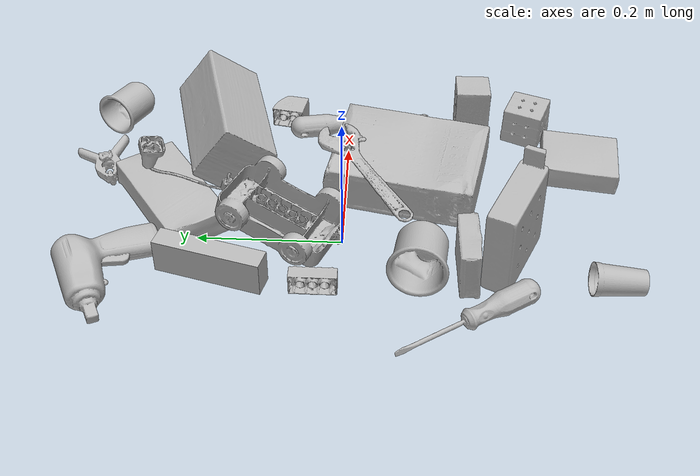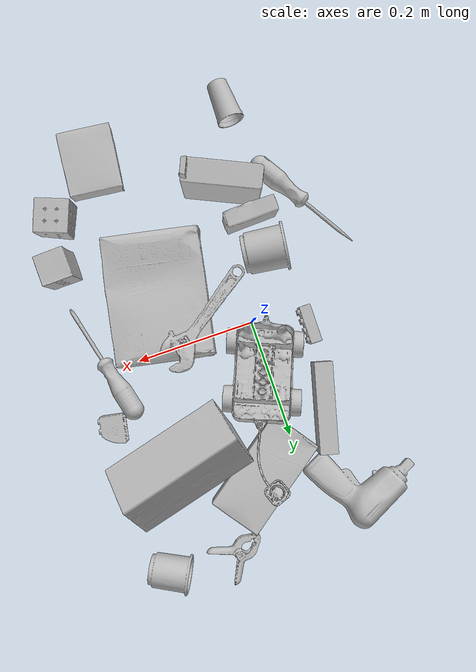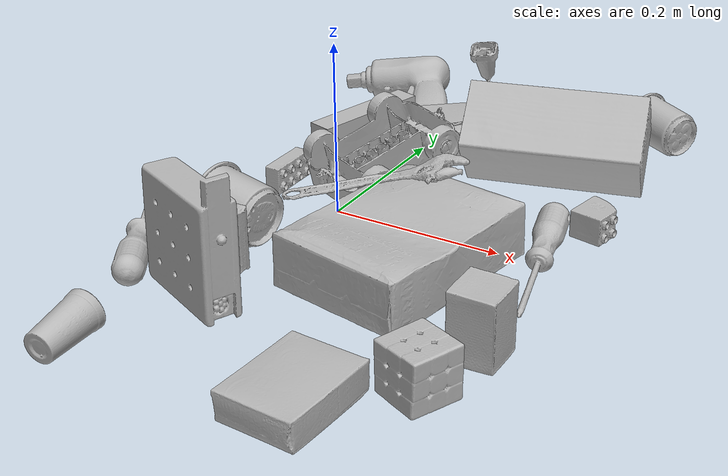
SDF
<sdf version="1.4">
  <world name="default">
    <light name="light1" type="point">
      <pose>0 0 1 0 0 0</pose>
      <diffuse>3 3 3 1</diffuse>
      <specular>3 3 3 1</specular>
    </light>
    <light name="light2" type="point">
      <pose>0 0.5 2 0 0 0</pose>
      <diffuse>1 1 1 1</diffuse>
      <specular>1 1 1 1</specular>
    </light>
    <light name="light3" type="point">
      <pose>0 0.5 2 0 0 0</pose>
      <diffuse>3 3 3 1</diffuse>
      <specular>3 3 3 1</specular>
    </light>
    <scene>
      <ambient>0.7 0.7 0.7</ambient>
    </scene>
    <model name="box21">
      <link name="link_box21">
        <collision name="default">
          <geometry>
            <mesh>
              <uri>model://cracker_box/collision_meshes/collision.obj</uri>
              <scale>1.0 1.0 1.0</scale>
            </mesh>
          </geometry>
          <surface>
            <friction>
              <ode>
                <mu>0.5</mu>
                <mu2>0.5</mu2>
              </ode>
            </friction>
          <contact>
        <ode>
            <max_vel>0</max_vel>
            <min_depth>0.0001</min_depth>
            <kp>1e8</kp>
        </ode>
    </contact></surface>
        </collision>
        <visual name="default">
          <geometry>
            <mesh>
              <uri>model://cracker_box/visual_meshes/visual.dae</uri>
              <scale>1.0 1.0 1.0</scale>
            </mesh>
          </geometry>
        </visual>
        <inertial>
          <mass>2.967785358428955</mass>
          <pose>0.0009464151808060706 0.00025434247800149024 -0.0017029535956680775 -0.0003162076618733006 -0.011106490531610344 0.00254679570085012</pose>
          <inertia>
            <ixx>0.0075487206</ixx>
            <iyy>0.012464421</iyy>
            <izz>0.017787872</izz>
            <ixy>0</ixy>
            <ixz>0</ixz>
            <iyz>0</iyz>
          </inertia>
        </inertial>
      </link>
      <pose>0.13189785182476044 -0.0876614972949028 0.036481790244579315 -0.011788031084563768 -0.007367066886816437 1.3768079711267553</pose>
    </model>
    <model name="box22">
      <link name="link_box22">
        <collision name="default">
          <geometry>
            <mesh>
              <uri>model://rubiks_cube/collision_meshes/collision.obj</uri>
              <scale>1.0 1.0 1.0</scale>
            </mesh>
          </geometry>
          <surface>
            <friction>
              <ode>
                <mu>0.5</mu>
                <mu2>0.5</mu2>
              </ode>
            </friction>
          <contact>
        <ode>
            <max_vel>0</max_vel>
            <min_depth>0.0001</min_depth>
            <kp>1e8</kp>
        </ode>
    </contact></surface>
        </collision>
        <visual name="default">
          <geometry>
            <mesh>
              <uri>model://rubiks_cube/visual_meshes/visual.dae</uri>
              <scale>1.0 1.0 1.0</scale>
            </mesh>
          </geometry>
        </visual>
        <inertial>
          <mass>0.2631562352180481</mass>
          <pose>2.6721041649580002e-05 5.2569666877388954e-05 -7.264316082000732e-06 -0.05467275409565722 -0.09814109117242276 -0.03445701547045584</pose>
          <inertia>
            <ixx>0.0001454115</ixx>
            <iyy>0.00014473335</iyy>
            <izz>0.00014661645</izz>
            <ixy>0</ixy>
            <ixz>0</ixz>
            <iyz>0</iyz>
          </inertia>
        </inertial>
      </link>
      <pose>0.2520363926887512 -0.2671244442462921 0.02867893874645233 -5.077067131967531e-06 -2.2193190564832668e-06 2.759340498583177</pose>
    </model>
    <model name="box23">
      <link name="link_box23">
        <collision name="default">
          <geometry>
            <mesh>
              <uri>model://pudding_box/collision_meshes/collision.obj</uri>
              <scale>1.0 1.0 1.0</scale>
            </mesh>
          </geometry>
          <surface>
            <friction>
              <ode>
                <mu>0.5</mu>
                <mu2>0.5</mu2>
              </ode>
            </friction>
          <contact>
        <ode>
            <max_vel>0</max_vel>
            <min_depth>0.0001</min_depth>
            <kp>1e8</kp>
        </ode>
    </contact></surface>
        </collision>
        <visual name="default">
          <geometry>
            <mesh>
              <uri>model://pudding_box/visual_meshes/visual.dae</uri>
              <scale>1.0 1.0 1.0</scale>
            </mesh>
          </geometry>
        </visual>
        <inertial>
          <mass>0.41353368759155273</mass>
          <pose>0.0004894821904599667 0.0008067885646596551 -0.0005188827635720372 0.005213101814074476 -0.006603797777454713 0.020079821436089117</pose>
          <inertia>
            <ixx>0.0004674785</ixx>
            <iyy>0.00031452288</iyy>
            <izz>0.0006903542</izz>
            <ixy>0</ixy>
            <ixz>0</ixz>
            <iyz>0</iyz>
          </inertia>
        </inertial>
      </link>
      <pose>0.16669946908950806 -0.33897164463996887 0.019725803285837173 0.022348652758867035 -0.011391594296740436 -0.10385561894571191</pose>
    </model>
    <model name="cup1">
      <link name="link_cup1">
        <collision name="default">
          <geometry>
            <mesh>
              <uri>model://cup_small/collision_meshes/collision.obj</uri>
              <scale>1.0 1.0 1.0</scale>
            </mesh>
          </geometry>
          <surface>
            <friction>
              <ode>
                <mu>0.5</mu>
                <mu2>0.5</mu2>
              </ode>
            </friction>
          <contact>
        <ode>
            <max_vel>0</max_vel>
            <min_depth>0.0001</min_depth>
            <kp>1e8</kp>
        </ode>
    </contact></surface>
        </collision>
        <visual name="default">
          <geometry>
            <mesh>
              <uri>model://cup_small/visual_meshes/visual.dae</uri>
              <scale>1.0 1.0 1.0</scale>
            </mesh>
          </geometry>
        </visual>
        <inertial>
          <mass>0.02095564641058445</mass>
          <pose>0.00010482477955520153 -0.0003377848770469427 -0.01074282731860876 -0.011492722259696445 -0.015280529703091471 -0.5058449819350237</pose>
          <inertia>
            <ixx>1.2338362e-05</ixx>
            <iyy>1.240201e-05</iyy>
            <izz>5.5708097e-06</izz>
            <ixy>0</ixy>
            <ixz>0</ixz>
            <iyz>0</iyz>
          </inertia>
        </inertial>
      </link>
      <pose>-0.07507549226284027 -0.3624403476715088 0.01985897496342659 -0.8049695293631819 1.439574367241343 0.7899295962558718</pose>
    </model>
    <model name="cup2">
      <link name="link_cup2">
        <collision name="default">
          <geometry>
            <mesh>
              <uri>model://c_cups/collision_meshes/collision.obj</uri>
              <scale>1.0 1.0 1.0</scale>
            </mesh>
          </geometry>
          <surface>
            <friction>
              <ode>
                <mu>0.5</mu>
                <mu2>0.5</mu2>
              </ode>
            </friction>
          <contact>
        <ode>
            <max_vel>0</max_vel>
            <min_depth>0.0001</min_depth>
            <kp>1e8</kp>
        </ode>
    </contact></surface>
        </collision>
        <visual name="default">
          <geometry>
            <mesh>
              <uri>model://c_cups/visual_meshes/visual.dae</uri>
              <scale>1.0 1.0 1.0</scale>
            </mesh>
          </geometry>
        </visual>
        <inertial>
          <mass>0.04905003309249878</mass>
          <pose>0.0007237255922518671 0.0020153908990323544 -0.0012750986497849226 0.30215813246853196 0.013461388587527759 -0.08771773533446486</pose>
          <inertia>
            <ixx>3.6477843e-05</ixx>
            <iyy>3.583322e-05</iyy>
            <izz>3.225985e-05</izz>
            <ixy>0</ixy>
            <ixz>0</ixz>
            <iyz>0</iyz>
          </inertia>
        </inertial>
      </link>
      <pose>0.25928694009780884 0.34334230422973633 0.03001346066594124 -1.4920993073633986 0.389519144704369 1.1406436256698107</pose>
    </model>
    <model name="box11">
      <link name="link_box11">
        <collision name="default">
          <geometry>
            <mesh>
              <uri>model://sugar_box/collision_meshes/collision.obj</uri>
              <scale>1.0 1.0 1.0</scale>
            </mesh>
          </geometry>
          <surface>
            <friction>
              <ode>
                <mu>0.5</mu>
                <mu2>0.5</mu2>
              </ode>
            </friction>
          <contact>
        <ode>
            <max_vel>0</max_vel>
            <min_depth>0.0001</min_depth>
            <kp>1e8</kp>
        </ode>
    </contact></surface>
        </collision>
        <visual name="default">
          <geometry>
            <mesh>
              <uri>model://sugar_box/visual_meshes/visual.dae</uri>
              <scale>1.0 1.0 1.0</scale>
            </mesh>
          </geometry>
        </visual>
        <inertial>
          <mass>0.9405714869499207</mass>
          <pose>0.0010343727190047503 3.849109634757042e-05 -0.0003636480832938105 -0.00040462618385709627 0.0010506635220579009 0.0026153790218148127</pose>
          <inertia>
            <ixx>0.0007836817</ixx>
            <iyy>0.0025330195</iyy>
            <izz>0.0030323272</izz>
            <ixy>0</ixy>
            <ixz>0</ixz>
            <iyz>0</iyz>
          </inertia>
        </inertial>
      </link>
      <pose>0.06087677553296089 0.2429436892271042 0.02280956692993641 0.0021179844877126453 -0.023383571298535043 0.6235160547140282</pose>
    </model>
    <model name="box12">
      <link name="link_box12">
        <collision name="default">
          <geometry>
            <mesh>
              <uri>model://jenga/collision_meshes/collision.obj</uri>
              <scale>1.0 1.0 1.0</scale>
            </mesh>
          </geometry>
          <surface>
            <friction>
              <ode>
                <mu>0.5</mu>
                <mu2>0.5</mu2>
              </ode>
            </friction>
          <contact>
        <ode>
            <max_vel>0</max_vel>
            <min_depth>0.0001</min_depth>
            <kp>1e8</kp>
        </ode>
    </contact></surface>
        </collision>
        <visual name="default">
          <geometry>
            <mesh>
              <uri>model://jenga/visual_meshes/visual.dae</uri>
              <scale>1.0 1.0 1.0</scale>
            </mesh>
          </geometry>
        </visual>
        <inertial>
          <mass>0.2285791039466858</mass>
          <pose>-2.502855807051674e-07 -0.00010250010382151231 -4.0923405322246253e-05 0.0 -7.342155186052628e-07 0.0</pose>
          <inertia>
            <ixx>6.3253385e-05</ixx>
            <iyy>0.00042860323</iyy>
            <izz>0.00045757034</izz>
            <ixy>0</ixy>
            <ixz>0</ixz>
            <iyz>0</iyz>
          </inertia>
        </inertial>
      </link>
      <pose>-0.06766974180936813 0.17079654335975647 0.024496998637914658 -1.5774832833035708 1.3835902780533913e-06 -1.8345820031828002</pose>
    </model>
    <model name="box13">
      <link name="link_box13">
        <collision name="default">
          <geometry>
            <mesh>
              <uri>model://wood_block/collision_meshes/collision.obj</uri>
              <scale>1.0 1.0 1.0</scale>
            </mesh>
          </geometry>
          <surface>
            <friction>
              <ode>
                <mu>0.5</mu>
                <mu2>0.5</mu2>
              </ode>
            </friction>
          <contact>
        <ode>
            <max_vel>0</max_vel>
            <min_depth>0.0001</min_depth>
            <kp>1e8</kp>
        </ode>
    </contact></surface>
        </collision>
        <visual name="default">
          <geometry>
            <mesh>
              <uri>model://wood_block/visual_meshes/visual.dae</uri>
              <scale>1.0 1.0 1.0</scale>
            </mesh>
          </geometry>
        </visual>
        <inertial>
          <mass>1.608048677444458</mass>
          <pose>-5.813315056002466e-06 -0.000570809468626976 0.0002640858292579651 -0.05220975529066727 -0.005192695547513155 -0.006861377927637377</pose>
          <inertia>
            <ixx>0.002151813</ixx>
            <iyy>0.006797577</iyy>
            <izz>0.0067721503</izz>
            <ixy>0</ixy>
            <ixz>0</ixz>
            <iyz>0</iyz>
          </inertia>
        </inertial>
      </link>
      <pose>0.18543802201747894 0.18029537796974182 0.06122288107872009 2.2563507545699206 -0.0071809225877318555 0.2559014732993476</pose>
    </model>
    <model name="box14">
      <link name="link_box14">
        <collision name="default">
          <geometry>
            <mesh>
              <uri>model://gelatin_box/collision_meshes/collision.obj</uri>
              <scale>1.0 1.0 1.0</scale>
            </mesh>
          </geometry>
          <surface>
            <friction>
              <ode>
                <mu>0.5</mu>
                <mu2>0.5</mu2>
              </ode>
            </friction>
          <contact>
        <ode>
            <max_vel>0</max_vel>
            <min_depth>0.0001</min_depth>
            <kp>1e8</kp>
        </ode>
    </contact></surface>
        </collision>
        <visual name="default">
          <geometry>
            <mesh>
              <uri>model://gelatin_box/visual_meshes/visual.dae</uri>
              <scale>1.0 1.0 1.0</scale>
            </mesh>
          </geometry>
        </visual>
        <inertial>
          <mass>0.228233203291893</mass>
          <pose>0.0004319618456065655 0.00011156871914863586 -0.0003640321083366871 -0.0010503721031013481 -0.004755817754301117 0.016440566922732165</pose>
          <inertia>
            <ixx>0.000161114</ixx>
            <iyy>0.0001150829</iyy>
            <izz>0.0002452514</izz>
            <ixy>0</ixy>
            <ixz>0</ixz>
            <iyz>0</iyz>
          </inertia>
        </inertial>
      </link>
      <pose>-0.053159449249506 -0.16840149462223053 0.036439135670661926 0.21418346909284544 -1.5414476061886562 1.3820934400082472</pose>
    </model>
    <model name="cup15">
      <link name="link_cup15">
        <collision name="default">
          <geometry>
            <mesh>
              <uri>model://f_cups/collision_meshes/collision.obj</uri>
              <scale>1.0 1.0 1.0</scale>
            </mesh>
          </geometry>
          <surface>
            <friction>
              <ode>
                <mu>0.5</mu>
                <mu2>0.5</mu2>
              </ode>
            </friction>
          <contact>
        <ode>
            <max_vel>0</max_vel>
            <min_depth>0.0001</min_depth>
            <kp>1e8</kp>
        </ode>
    </contact></surface>
        </collision>
        <visual name="default">
          <geometry>
            <mesh>
              <uri>model://f_cups/visual_meshes/visual.dae</uri>
              <scale>1.0 1.0 1.0</scale>
            </mesh>
          </geometry>
        </visual>
        <inertial>
          <mass>0.05267045274376869</mass>
          <pose>-0.003171468386426568 -0.0006240073125809431 -0.003655537962913513 0.7862325736201227 -0.2607934836260618 -0.18237270236977254</pose>
          <inertia>
            <ixx>4.9511644e-05</ixx>
            <iyy>5.193826e-05</iyy>
            <izz>5.4069198e-05</izz>
            <ixy>0</ixy>
            <ixz>0</ixz>
            <iyz>0</iyz>
          </inertia>
        </inertial>
      </link>
      <pose>-0.057654689997434616 -0.10500217974185944 0.037031058222055435 1.3152917977159795 -1.1783081465364118 -1.459523996882823</pose>
    </model>
    <model name="toy1">
      <link name="link_toy1">
        <collision name="default">
          <geometry>
            <mesh>
              <uri>model://g_lego_duplo/collision_meshes/collision.obj</uri>
              <scale>1.0 1.0 1.0</scale>
            </mesh>
          </geometry>
          <surface>
            <friction>
              <ode>
                <mu>0.5</mu>
                <mu2>0.5</mu2>
              </ode>
            </friction>
          <contact>
        <ode>
            <max_vel>0</max_vel>
            <min_depth>0.0001</min_depth>
            <kp>1e8</kp>
        </ode>
    </contact></surface>
        </collision>
        <visual name="default">
          <geometry>
            <mesh>
              <uri>model://g_lego_duplo/visual_meshes/visual.dae</uri>
              <scale>1.0 1.0 1.0</scale>
            </mesh>
          </geometry>
        </visual>
        <inertial>
          <mass>0.5557854771614075</mass>
          <pose>-0.050047677010297775 0.0017554635414853692 0.0038806761149317026 0.01096300832625367 0.038108254431045284 -0.0965302354071939</pose>
          <inertia>
            <ixx>0.0008053398</ixx>
            <iyy>0.0024348022</iyy>
            <izz>0.003046027</izz>
            <ixy>0</ixy>
            <ixz>0</ixz>
            <iyz>0</iyz>
          </inertia>
        </inertial>
      </link>
      <pose>0.02876749262213707 0.13837075233459473 0.0588301457464695 -3.0770006032701938 -0.2530129808074727 1.174132462412281</pose>
    </model>
    <model name="toy2">
      <link name="link_toy2">
        <collision name="default">
          <geometry>
            <mesh>
              <uri>model://b_toy_airplane/collision_meshes/collision.obj</uri>
              <scale>1.0 1.0 1.0</scale>
            </mesh>
          </geometry>
          <surface>
            <friction>
              <ode>
                <mu>0.5</mu>
                <mu2>0.5</mu2>
              </ode>
            </friction>
          <contact>
        <ode>
            <max_vel>0</max_vel>
            <min_depth>0.0001</min_depth>
            <kp>1e8</kp>
        </ode>
    </contact></surface>
        </collision>
        <visual name="default">
          <geometry>
            <mesh>
              <uri>model://b_toy_airplane/visual_meshes/visual.dae</uri>
              <scale>1.0 1.0 1.0</scale>
            </mesh>
          </geometry>
        </visual>
        <inertial>
          <mass>0.5134223699569702</mass>
          <pose>0.00508136348798871 0.004015584941953421 0.009543065913021564 -0.0400181167848636 -0.04022184003740235 -0.5601502230799963</pose>
          <inertia>
            <ixx>0.00095317804</ixx>
            <iyy>0.00038099466</iyy>
            <izz>0.0011858484</izz>
            <ixy>0</ixy>
            <ixz>0</ixz>
            <iyz>0</iyz>
          </inertia>
        </inertial>
      </link>
      <pose>-0.07532718032598495 0.3173803985118866 0.035689081996679306 3.0695729036060366 0.07405632992088705 -2.6907890778628905</pose>
    </model>
    <model name="toy3">
      <link name="link_toy3">
        <collision name="default">
          <geometry>
            <mesh>
              <uri>model://foam_brick/collision_meshes/collision.obj</uri>
              <scale>1.0 1.0 1.0</scale>
            </mesh>
          </geometry>
          <surface>
            <friction>
              <ode>
                <mu>0.5</mu>
                <mu2>0.5</mu2>
              </ode>
            </friction>
          <contact>
        <ode>
            <max_vel>0</max_vel>
            <min_depth>0.0001</min_depth>
            <kp>1e8</kp>
        </ode>
    </contact></surface>
        </collision>
        <visual name="default">
          <geometry>
            <mesh>
              <uri>model://foam_brick/visual_meshes/visual.dae</uri>
              <scale>1.0 1.0 1.0</scale>
            </mesh>
          </geometry>
        </visual>
        <inertial>
          <mass>0.10737738013267517</mass>
          <pose>-0.0002522472059354186 0.00034584314562380314 -0.0002532101352699101 -0.29401713280371045 0.01727443708188723 -0.0007449863066790336</pose>
          <inertia>
            <ixx>4.6904443e-05</ixx>
            <iyy>7.488536e-05</iyy>
            <izz>7.583706e-05</izz>
            <ixy>0</ixy>
            <ixz>0</ixz>
            <iyz>0</iyz>
          </inertia>
        </inertial>
      </link>
      <pose>0.2719399631023407 -0.18491075932979584 0.03830837085843086 2.0103059888075983 1.5521822663444578 -2.686187429794046</pose>
    </model>
    <model name="toy4">
      <link name="link_toy4">
        <collision name="default">
          <geometry>
            <mesh>
              <uri>model://c_lego_duplo/collision_meshes/collision.obj</uri>
              <scale>1.0 1.0 1.0</scale>
            </mesh>
          </geometry>
          <surface>
            <friction>
              <ode>
                <mu>0.5</mu>
                <mu2>0.5</mu2>
              </ode>
            </friction>
          <contact>
        <ode>
            <max_vel>0</max_vel>
            <min_depth>0.0001</min_depth>
            <kp>1e8</kp>
        </ode>
    </contact></surface>
        </collision>
        <visual name="default">
          <geometry>
            <mesh>
              <uri>model://c_lego_duplo/visual_meshes/visual.dae</uri>
              <scale>1.0 1.0 1.0</scale>
            </mesh>
          </geometry>
        </visual>
        <inertial>
          <mass>0.0418582409620285</mass>
          <pose>0.00031645974377170205 0.00019464627257548273 0.0010453157592564821 -0.011520806412656213 0.005900100982121691 0.03110035028309464</pose>
          <inertia>
            <ixx>1.6107831e-05</ixx>
            <iyy>5.145423e-06</iyy>
            <izz>1.8823655e-05</izz>
            <ixy>0</ixy>
            <ixz>0</ixz>
            <iyz>0</iyz>
          </inertia>
        </inertial>
      </link>
      <pose>-0.08779667317867279 0.03383071720600128 0.01640295796096325 -1.4156922467065636 1.5444058780161216 -1.4210319360394774</pose>
    </model>
    <model name="toy5">
      <link name="link_toy5">
        <collision name="default">
          <geometry>
            <mesh>
              <uri>model://nine_hole_peg_test/collision_meshes/collision.obj</uri>
              <scale>1.0 1.0 1.0</scale>
            </mesh>
          </geometry>
          <surface>
            <friction>
              <ode>
                <mu>0.5</mu>
                <mu2>0.5</mu2>
              </ode>
            </friction>
          <contact>
        <ode>
            <max_vel>0</max_vel>
            <min_depth>0.0001</min_depth>
            <kp>1e8</kp>
        </ode>
    </contact></surface>
        </collision>
        <visual name="default">
          <geometry>
            <mesh>
              <uri>model://nine_hole_peg_test/visual_meshes/visual.dae</uri>
              <scale>1.0 1.0 1.0</scale>
            </mesh>
          </geometry>
        </visual>
        <inertial>
          <mass>0.44585999846458435</mass>
          <pose>-0.004617387428879738 -0.009647615253925323 2.6460689696250483e-05 -0.001466677754783098 0.0007194209279192062 -0.6342398490080472</pose>
          <inertia>
            <ixx>0.0006971755</ixx>
            <iyy>0.0006509454</iyy>
            <izz>0.0012216569</izz>
            <ixy>0</ixy>
            <ixz>0</ixz>
            <iyz>0</iyz>
          </inertia>
        </inertial>
      </link>
      <pose>-0.021108761429786682 -0.22863471508026123 0.07397209852933884 1.5549907315139495 -0.009793853942241986 -0.42669137042061</pose>
    </model>
    <model name="toy6">
      <link name="link_toy6">
        <collision name="default">
          <geometry>
            <mesh>
              <uri>model://d_lego_duplo/collision_meshes/collision.obj</uri>
              <scale>1.0 1.0 1.0</scale>
            </mesh>
          </geometry>
          <surface>
            <friction>
              <ode>
                <mu>0.5</mu>
                <mu2>0.5</mu2>
              </ode>
            </friction>
          <contact>
        <ode>
            <max_vel>0</max_vel>
            <min_depth>0.0001</min_depth>
            <kp>1e8</kp>
        </ode>
    </contact></surface>
        </collision>
        <visual name="default">
          <geometry>
            <mesh>
              <uri>model://d_lego_duplo/visual_meshes/visual.dae</uri>
              <scale>1.0 1.0 1.0</scale>
            </mesh>
          </geometry>
        </visual>
        <inertial>
          <mass>0.03287249803543091</mass>
          <pose>0.00283056334592402 0.0001636616507312283 0.000858980929479003 0.08010843587180921 -0.38355193616427774 0.0010296778305230027</pose>
          <inertia>
            <ixx>6.363631e-06</ixx>
            <iyy>9.031719e-06</iyy>
            <izz>8.709827e-06</izz>
            <ixy>0</ixy>
            <ixz>0</ixz>
            <iyz>0</iyz>
          </inertia>
        </inertial>
      </link>
      <pose>0.275559663772583 0.09294599294662476 0.01638062484562397 -1.5707963194151136 -0.008044400452436078 -1.7547185368809257</pose>
    </model>
    <model name="hardware1">
      <link name="link_hardware1">
        <collision name="default">
          <geometry>
            <mesh>
              <uri>model://phillips_screwdriver/collision_meshes/collision.obj</uri>
              <scale>1.0 1.0 1.0</scale>
            </mesh>
          </geometry>
          <surface>
            <friction>
              <ode>
                <mu>0.5</mu>
                <mu2>0.5</mu2>
              </ode>
            </friction>
          <contact>
        <ode>
            <max_vel>0</max_vel>
            <min_depth>0.0001</min_depth>
            <kp>1e8</kp>
        </ode>
    </contact></surface>
        </collision>
        <visual name="default">
          <geometry>
            <mesh>
              <uri>model://phillips_screwdriver/visual_meshes/visual.dae</uri>
              <scale>1.0 1.0 1.0</scale>
            </mesh>
          </geometry>
        </visual>
        <inertial>
          <mass>0.05929635465145111</mass>
          <pose>-0.04777182266116142 0.0010362300090491772 -0.00045555492397397757 -0.15720933335137202 0.005850991845378533 -0.002156742438797471</pose>
          <inertia>
            <ixx>6.9667135e-06</ixx>
            <iyy>8.735042e-05</iyy>
            <izz>8.742465e-05</izz>
            <ixy>0</ixy>
            <ixz>0</ixz>
            <iyz>0</iyz>
          </inertia>
        </inertial>
      </link>
      <pose>0.2525642514228821 -0.0127020925283432 0.015409659594297409 0.0656113798590078 0.037568019787933976 -1.3256670523649396</pose>
    </model>
    <model name="hardware2">
      <link name="link_hardware2">
        <collision name="default">
          <geometry>
            <mesh>
              <uri>model://flat_screwdriver/collision_meshes/collision.obj</uri>
              <scale>1.0 1.0 1.0</scale>
            </mesh>
          </geometry>
          <surface>
            <friction>
              <ode>
                <mu>0.5</mu>
                <mu2>0.5</mu2>
              </ode>
            </friction>
          <contact>
        <ode>
            <max_vel>0</max_vel>
            <min_depth>0.0001</min_depth>
            <kp>1e8</kp>
        </ode>
    </contact></surface>
        </collision>
        <visual name="default">
          <geometry>
            <mesh>
              <uri>model://flat_screwdriver/visual_meshes/visual.dae</uri>
              <scale>1.0 1.0 1.0</scale>
            </mesh>
          </geometry>
        </visual>
        <inertial>
          <mass>0.08023945242166519</mass>
          <pose>-0.0489187017083168 -0.0006576800369657576 -0.000614091579336673 -0.561358306335632 -0.0032337267228942767 0.006982275729110292</pose>
          <inertia>
            <ixx>9.4802335e-06</ixx>
            <iyy>0.00012035375</iyy>
            <izz>0.00012029803</izz>
            <ixy>0</ixy>
            <ixz>0</ixz>
            <iyz>0</iyz>
          </inertia>
        </inertial>
      </link>
      <pose>-0.14504437148571014 -0.1665760725736618 0.015211116522550583 1.7959008007379058 0.038806702548345486 2.1399432407466676</pose>
    </model>
    <model name="hardware3">
      <link name="link_hardware3">
        <collision name="default">
          <geometry>
            <mesh>
              <uri>model://medium_clamp/collision_meshes/collision.obj</uri>
              <scale>1.0 1.0 1.0</scale>
            </mesh>
          </geometry>
          <surface>
            <friction>
              <ode>
                <mu>0.5</mu>
                <mu2>0.5</mu2>
              </ode>
            </friction>
          <contact>
        <ode>
            <max_vel>0</max_vel>
            <min_depth>0.0001</min_depth>
            <kp>1e8</kp>
        </ode>
    </contact></surface>
        </collision>
        <visual name="default">
          <geometry>
            <mesh>
              <uri>model://medium_clamp/visual_meshes/visual.dae</uri>
              <scale>1.0 1.0 1.0</scale>
            </mesh>
          </geometry>
        </visual>
        <inertial>
          <mass>0.025976430624723434</mass>
          <pose>0.0053909942507743835 0.0003953239065594971 -0.0001222159480676055 -0.001226907020768324 0.0025845009771016812 0.038207788380880015</pose>
          <inertia>
            <ixx>7.0769133e-06</ixx>
            <iyy>1.02989125e-05</iyy>
            <izz>1.5863408e-05</izz>
            <ixy>0</ixy>
            <ixz>0</ixz>
            <iyz>0</iyz>
          </inertia>
        </inertial>
      </link>
      <pose>0.14550676941871643 0.35468098521232605 0.013314727693796158 -3.0195281209860347 0.07747268833089099 -2.76147900970387</pose>
    </model>
    <model name="hardware4">
      <link name="link_hardware4">
        <collision name="default">
          <geometry>
            <mesh>
              <uri>model://adjustable_wrench/collision_meshes/collision.obj</uri>
              <scale>1.0 1.0 1.0</scale>
            </mesh>
          </geometry>
          <surface>
            <friction>
              <ode>
                <mu>0.5</mu>
                <mu2>0.5</mu2>
              </ode>
            </friction>
          <contact>
        <ode>
            <max_vel>0</max_vel>
            <min_depth>0.0001</min_depth>
            <kp>1e8</kp>
        </ode>
    </contact></surface>
        </collision>
        <visual name="default">
          <geometry>
            <mesh>
              <uri>model://adjustable_wrench/visual_meshes/visual.dae</uri>
              <scale>1.0 1.0 1.0</scale>
            </mesh>
          </geometry>
        </visual>
        <inertial>
          <mass>0.023418840020895004</mass>
          <pose>0.03740980848670006 -0.00289688678458333 -0.0011149229248985648 -0.014473354604289867 0.006656022134877207 -0.010954199158636425</pose>
          <inertia>
            <ixx>4.793005e-06</ixx>
            <iyy>5.609652e-05</iyy>
            <izz>6.0634928e-05</izz>
            <ixy>0</ixy>
            <ixz>0</ixz>
            <iyz>0</iyz>
          </inertia>
        </inertial>
      </link>
      <pose>0.07455770671367645 -0.031646594405174255 0.0702180340886116 3.0545220037259164 -0.13503434975678003 0.6351577147919719</pose>
    </model>
  <physics type="ode">
      <max_contacts>50</max_contacts>
      <ode>
        <solver>
          <type>quick</type>
          <iters>75</iters>
        </solver>
        <constraints>
          <contact_max_correcting_vel>0</contact_max_correcting_vel>
          <contact_surface_layer>0</contact_surface_layer>
        </constraints>
      </ode>
    </physics></world>
</sdf>
